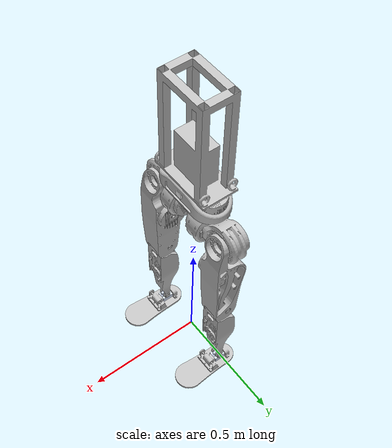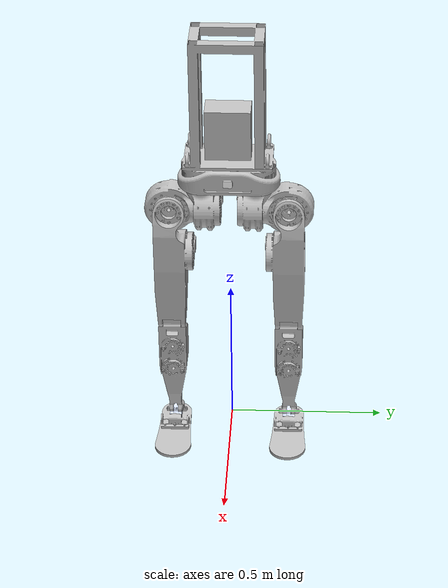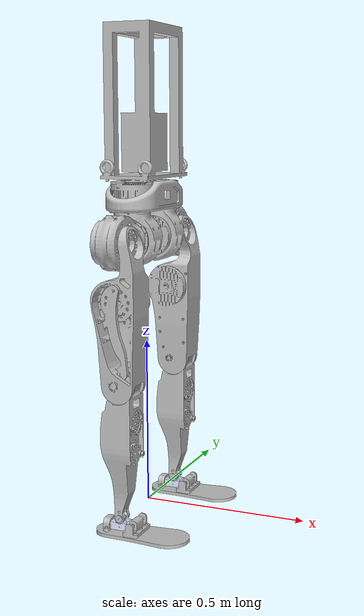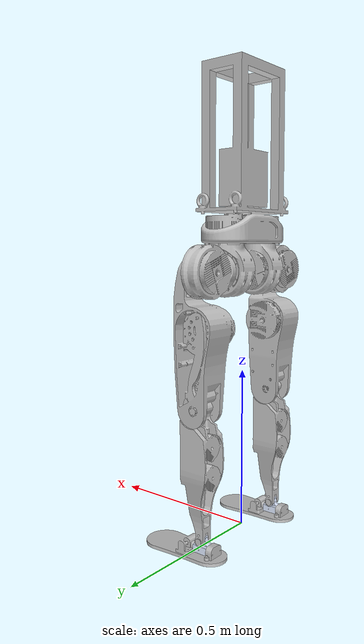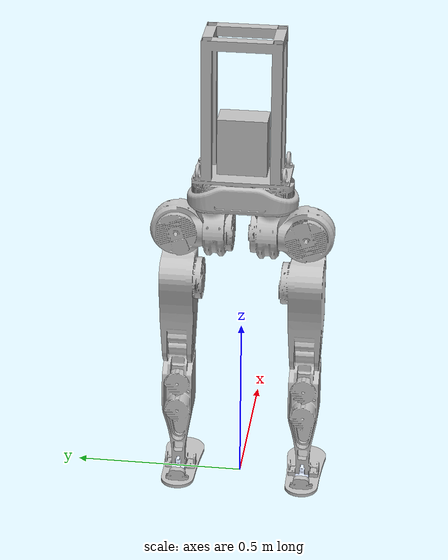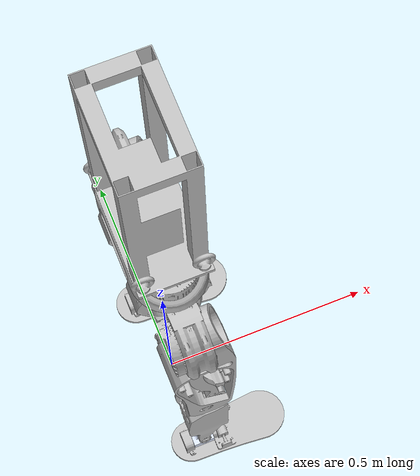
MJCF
<mujoco model="tahiti_c1">
  <compiler angle="radian" meshdir="./"/>
  <!-- Match Isaac sim_dt = 0.005 (200 Hz physics, policy at 50 Hz with decimation=4). -->
  <option timestep="0.005" iterations="50" tolerance="1e-10" integrator="Euler"/>

  <default>
    <default class="tahiti_c1">
      <geom contype="1" conaffinity="0"/>
      <default class="legs_x12_320">
        <joint armature="0.326938" frictionloss="1.694307" damping="0.350134"/>
      </default>
      <default class="ankles_x6_60">
        <joint armature="0.019603" frictionloss="0.321816" damping="0.165640"/>
      </default>
    </default>
  </default>

  <asset>
    <mesh name="base_link" content_type="model/stl" file="meshes/base_link.STL"/>
    <mesh name="left_hip_yaw_link" content_type="model/stl" file="meshes/left_hip_yaw_link.STL"/>
    <mesh name="left_hip_pitch_link" content_type="model/stl" file="meshes/left_hip_pitch_link.STL"/>
    <mesh name="left_hip_roll_link" content_type="model/stl" file="meshes/left_hip_roll_link.STL"/>
    <mesh name="left_knee_link" content_type="model/stl" file="meshes/left_knee_link.STL"/>
    <mesh name="left_ankle_pitch_link" content_type="model/stl" file="meshes/left_ankle_pitch_link.STL"/>
    <mesh name="left_ankle_roll_link" content_type="model/stl" file="meshes/left_ankle_roll_link.STL"/>
    <mesh name="right_hip_yaw_link" content_type="model/stl" file="meshes/right_hip_yaw_link.STL"/>
    <mesh name="right_hip_pitch_link" content_type="model/stl" file="meshes/right_hip_pitch_link.STL"/>
    <mesh name="right_hip_roll_link" content_type="model/stl" file="meshes/right_hip_roll_link.STL"/>
    <mesh name="right_knee_link" content_type="model/stl" file="meshes/right_knee_link.STL"/>
    <mesh name="right_ankle_pitch_link" content_type="model/stl" file="meshes/right_ankle_pitch_link.STL"/>
    <mesh name="right_ankle_roll_link" content_type="model/stl" file="meshes/right_ankle_roll_link.STL"/>
    <mesh name="imu_in_pelvis" content_type="model/stl" file="meshes/imu_in_pelvis.STL"/>
  </asset>

  <worldbody>
    <body name="base_link" pos="0 0 0.9" childclass="tahiti_c1">
      <freejoint name="floating_base"/>
      <inertial pos="-0.00020255 6.2445e-05 0.11087" mass="13.352"
                diaginertia="0.065439 0.045753 0.052241"/>
      <geom type="mesh" contype="0" conaffinity="0" group="1" density="0" rgba="0.75294 0.75294 0.75294 1" mesh="base_link"/>
      <geom type="mesh" rgba="0.75294 0.75294 0.75294 1" mesh="base_link"/>
      <geom pos="0.07 0 0.04" quat="1 0 0 0" type="mesh" contype="0" conaffinity="0" group="1" density="0" rgba="1 1 1 1" mesh="imu_in_pelvis"/>
      <geom pos="0.07 0 0.04" quat="1 0 0 0" type="mesh" rgba="1 1 1 1" mesh="imu_in_pelvis"/>

      <body name="left_hip_yaw_link" pos="0 0.0875 -0.0005">
        <inertial pos="-0.000480857 -0.0170328 -0.0762664" quat="0.511816 0.483767 0.513695 0.490033" mass="3.79791" diaginertia="0.00759408 0.00647959 0.00423345"/>
        <joint name="left_hip_yaw_joint" class="legs_x12_320" pos="0 0 0" axis="0 0 1" range="-0.4363 0.4363" actuatorfrcrange="-85 85"/>
        <geom type="mesh" contype="0" conaffinity="0" group="1" density="0" rgba="0.752941 0.752941 0.752941 1" mesh="left_hip_yaw_link"/>
        <geom type="mesh" rgba="0.752941 0.752941 0.752941 1" mesh="left_hip_yaw_link"/>
        <body name="left_hip_pitch_link" pos="0 0.0205 -0.083">
          <inertial pos="-0.00827435 0.0764942 -0.000349449" quat="0.999885 -0.00585724 0.0036797 -0.0135221" mass="3.78303" diaginertia="0.00759109 0.00646098 0.00423682"/>
          <joint name="left_hip_pitch_joint" class="legs_x12_320" pos="0 0 0" axis="0 1 0" range="-2.0071 2.1817" actuatorfrcrange="-85 85"/>
          <geom type="mesh" contype="0" conaffinity="0" group="1" density="0" rgba="0.752941 0.752941 0.752941 1" mesh="left_hip_pitch_link"/>
          <geom type="mesh" rgba="0.752941 0.752941 0.752941 1" mesh="left_hip_pitch_link"/>
          <body name="left_hip_roll_link" pos="0.0305 0.083 0">
            <inertial pos="-0.0146308 -0.0120145 -0.202853" quat="0.703724 0.035256 0.0222276 0.70925" mass="6.83831" diaginertia="0.0659688 0.060645 0.0103318"/>
            <joint name="left_hip_roll_joint" class="legs_x12_320" pos="0 0 0" axis="1 0 0" range="-0.2618 2.7925" actuatorfrcrange="-85 85"/>
            <geom type="mesh" contype="0" conaffinity="0" group="1" density="0" rgba="0.752941 0.752941 0.752941 1" mesh="left_hip_roll_link"/>
            <geom type="mesh" rgba="0.752941 0.752941 0.752941 1" mesh="left_hip_roll_link"/>
            <body name="left_knee_link" pos="-0.0225 0.002 -0.402">
              <inertial pos="0.0087491 -0.0020942 -0.145" quat="0.999892 0.00161819 0.0144559 0.00211959" mass="4.3581" diaginertia="0.0333889 0.0323823 0.00367877"/>
              <joint name="left_knee_joint" class="legs_x12_320" pos="0 0 0" axis="0 1 0" range="0 2.1817" actuatorfrcrange="-85 85"/>
              <geom type="mesh" contype="0" conaffinity="0" group="1" density="0" rgba="0.75294 0.75294 0.75294 1" mesh="left_knee_link"/>
              <geom type="mesh" rgba="0.75294 0.75294 0.75294 1" mesh="left_knee_link"/>
              <body name="left_ankle_pitch_link" pos="-0.00082725 -0.002 -0.40245">
                <inertial pos="-0.00295639 3.52798e-09 -0.0206668" quat="0.546647 0.448527 0.448527 0.546647" mass="0.139926" diaginertia="4.92356e-05 4.60857e-05 3.72092e-05"/>
                <joint name="left_ankle_pitch_joint" class="ankles_x6_60" pos="0 0 0" axis="0 -1 0" range="-0.5236 0.8727" actuatorfrcrange="-20 20"/>
                <geom type="mesh" contype="0" conaffinity="0" group="1" density="0" rgba="0.866667 0.909804 1 1" mesh="left_ankle_pitch_link"/>
                <geom type="mesh" rgba="0.866667 0.909804 1 1" mesh="left_ankle_pitch_link"/>
                <body name="left_ankle_roll_link" pos="0.0225 0 -0.025">
                  <inertial pos="0.0302575 0.000330492 -0.0126286" quat="0 0.717912 0 0.696133" mass="1.16685" diaginertia="0.00628554 0.00550313 0.00100163"/>
                  <joint name="left_ankle_roll_joint" class="ankles_x6_60" pos="0 0 0" axis="-1 0 0" range="-0.1745 0.1745" actuatorfrcrange="-20 20"/>
                  <geom type="mesh" contype="0" conaffinity="0" group="1" density="0" rgba="0.752941 0.752941 0.752941 1" mesh="left_ankle_roll_link"/>
                  <geom type="mesh" rgba="0.752941 0.752941 0.752941 1" mesh="left_ankle_roll_link"/>
                </body>
              </body>
            </body>
          </body>
        </body>
      </body>

      <body name="right_hip_yaw_link" pos="0 -0.0875 -0.0005">
        <inertial pos="-0.000293345 0.0170328 -0.0762844" quat="0.489545 0.513981 0.490381 0.505663" mass="3.79791" diaginertia="0.00759282 0.00646879 0.0042455"/>
        <joint name="right_hip_yaw_joint" class="legs_x12_320" pos="0 0 0" axis="0 0 1" range="-0.4363 0.4363" actuatorfrcrange="-85 85"/>
        <geom type="mesh" contype="0" conaffinity="0" group="1" density="0" rgba="0.752941 0.752941 0.752941 1" mesh="right_hip_yaw_link"/>
        <geom type="mesh" rgba="0.752941 0.752941 0.752941 1" mesh="right_hip_yaw_link"/>
        <body name="right_hip_pitch_link" pos="0 -0.0205 -0.083">
          <inertial pos="-0.00827435 -0.0764942 0.000349449" quat="0.999885 -0.00585724 -0.0036797 0.0135221" mass="3.78303" diaginertia="0.00759109 0.00646098 0.00423682"/>
          <joint name="right_hip_pitch_joint" class="legs_x12_320" pos="0 0 0" axis="0 1 0" range="-2.0071 2.1817" actuatorfrcrange="-85 85"/>
          <geom type="mesh" contype="0" conaffinity="0" group="1" density="0" rgba="0.752941 0.752941 0.752941 1" mesh="right_hip_pitch_link"/>
          <geom type="mesh" rgba="0.752941 0.752941 0.752941 1" mesh="right_hip_pitch_link"/>
          <body name="right_hip_roll_link" pos="0.0305 -0.083 0">
            <inertial pos="-0.0145752 0.0120178 -0.202939" quat="0.709266 0.0221833 0.0352476 0.70371" mass="6.8383" diaginertia="0.0659688 0.0606479 0.0103287"/>
            <joint name="right_hip_roll_joint" class="legs_x12_320" pos="0 0 0" axis="1 0 0" range="-2.7925 0.2618" actuatorfrcrange="-85 85"/>
            <geom type="mesh" contype="0" conaffinity="0" group="1" density="0" rgba="0.752941 0.752941 0.752941 1" mesh="right_hip_roll_link"/>
            <geom type="mesh" rgba="0.752941 0.752941 0.752941 1" mesh="right_hip_roll_link"/>
            <body name="right_knee_link" pos="-0.0225 0 -0.402">
              <inertial pos="0.0087573 0.00020405 -0.14432" quat="0.99989 -0.00176249 0.0144761 0.00254846" mass="4.3581" diaginertia="0.033471 0.0324623 0.00368088"/>
              <joint name="right_knee_joint" class="legs_x12_320" pos="0 0 0" axis="0 1 0" range="0 2.1817" actuatorfrcrange="-85 85"/>
              <geom type="mesh" contype="0" conaffinity="0" group="1" density="0" rgba="0.75294 0.75294 0.75294 1" mesh="right_knee_link"/>
              <geom type="mesh" rgba="0.75294 0.75294 0.75294 1" mesh="right_knee_link"/>
              <body name="right_ankle_pitch_link" pos="-0.00082725 0 -0.40245">
                <inertial pos="-0.00295639 3.52798e-09 -0.0206668" quat="0.546647 0.448527 0.448527 0.546647" mass="0.139926" diaginertia="4.92356e-05 4.60857e-05 3.72092e-05"/>
                <joint name="right_ankle_pitch_joint" class="ankles_x6_60" pos="0 0 0" axis="0 -1 0" range="-0.5236 0.8727" actuatorfrcrange="-20 20"/>
                <geom type="mesh" contype="0" conaffinity="0" group="1" density="0" rgba="0.866667 0.909804 1 1" mesh="right_ankle_pitch_link"/>
                <geom type="mesh" rgba="0.866667 0.909804 1 1" mesh="right_ankle_pitch_link"/>
                <body name="right_ankle_roll_link" pos="0.0225 0 -0.025">
                  <inertial pos="0.0302575 0.000330492 -0.0126286" quat="0 0.717912 0 0.696133" mass="1.16685" diaginertia="0.00628554 0.00550313 0.00100163"/>
                  <joint name="right_ankle_roll_joint" class="ankles_x6_60" pos="0 0 0" axis="-1 0 0" range="-0.1745 0.1745" actuatorfrcrange="-20 20"/>
                  <geom type="mesh" contype="0" conaffinity="0" group="1" density="0" rgba="0.752941 0.752941 0.752941 1" mesh="right_ankle_roll_link"/>
                  <geom type="mesh" rgba="0.752941 0.752941 0.752941 1" mesh="right_ankle_roll_link"/>
                </body>
              </body>
            </body>
          </body>
        </body>
      </body>

    </body>
  </worldbody>

  <actuator>
    <motor name="left_hip_yaw"      joint="left_hip_yaw_joint"      ctrlrange="-85 85"/>
    <motor name="right_hip_yaw"     joint="right_hip_yaw_joint"     ctrlrange="-85 85"/>
    <motor name="left_hip_pitch"    joint="left_hip_pitch_joint"    ctrlrange="-85 85"/>
    <motor name="right_hip_pitch"   joint="right_hip_pitch_joint"   ctrlrange="-85 85"/>
    <motor name="left_hip_roll"     joint="left_hip_roll_joint"     ctrlrange="-85 85"/>
    <motor name="right_hip_roll"    joint="right_hip_roll_joint"    ctrlrange="-85 85"/>
    <motor name="left_knee"         joint="left_knee_joint"         ctrlrange="-85 85"/>
    <motor name="right_knee"        joint="right_knee_joint"        ctrlrange="-85 85"/>
    <motor name="left_ankle_pitch"  joint="left_ankle_pitch_joint"  ctrlrange="-20 20"/>
    <motor name="right_ankle_pitch" joint="right_ankle_pitch_joint" ctrlrange="-20 20"/>
    <motor name="left_ankle_roll"   joint="left_ankle_roll_joint"   ctrlrange="-20 20"/>
    <motor name="right_ankle_roll"  joint="right_ankle_roll_joint"  ctrlrange="-20 20"/>
  </actuator>

  <keyframe>
    <key name="home"
         qpos="0 0 0.93  1 0 0 0
               0 -0.10 0 0.30 0.20 0
               0 -0.10 0 0.30 0.20 0"/>
  </keyframe>

</mujoco>
